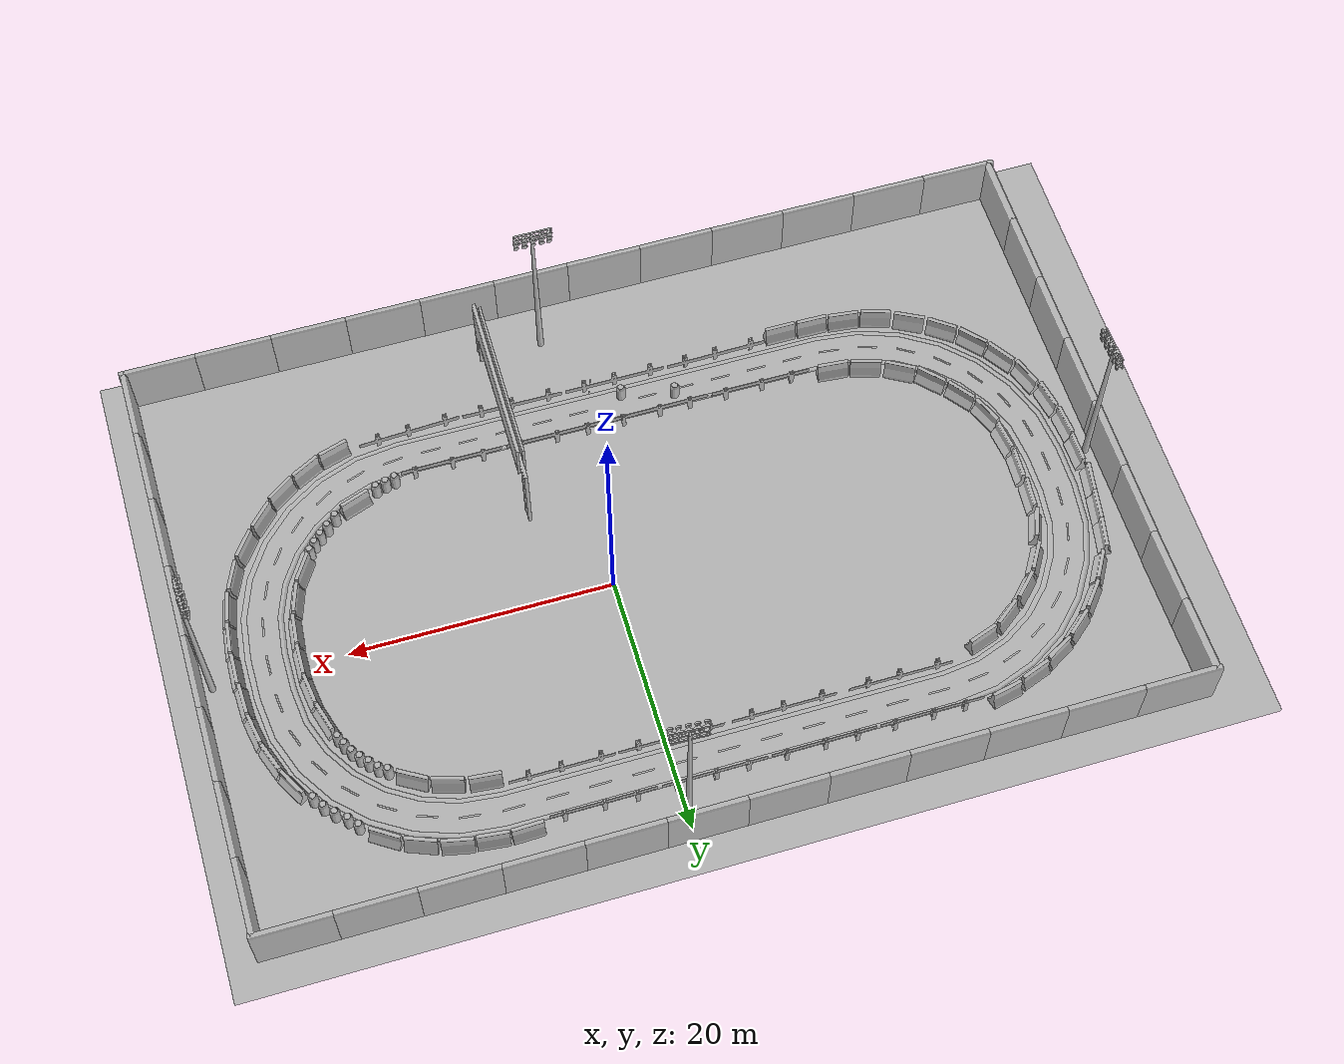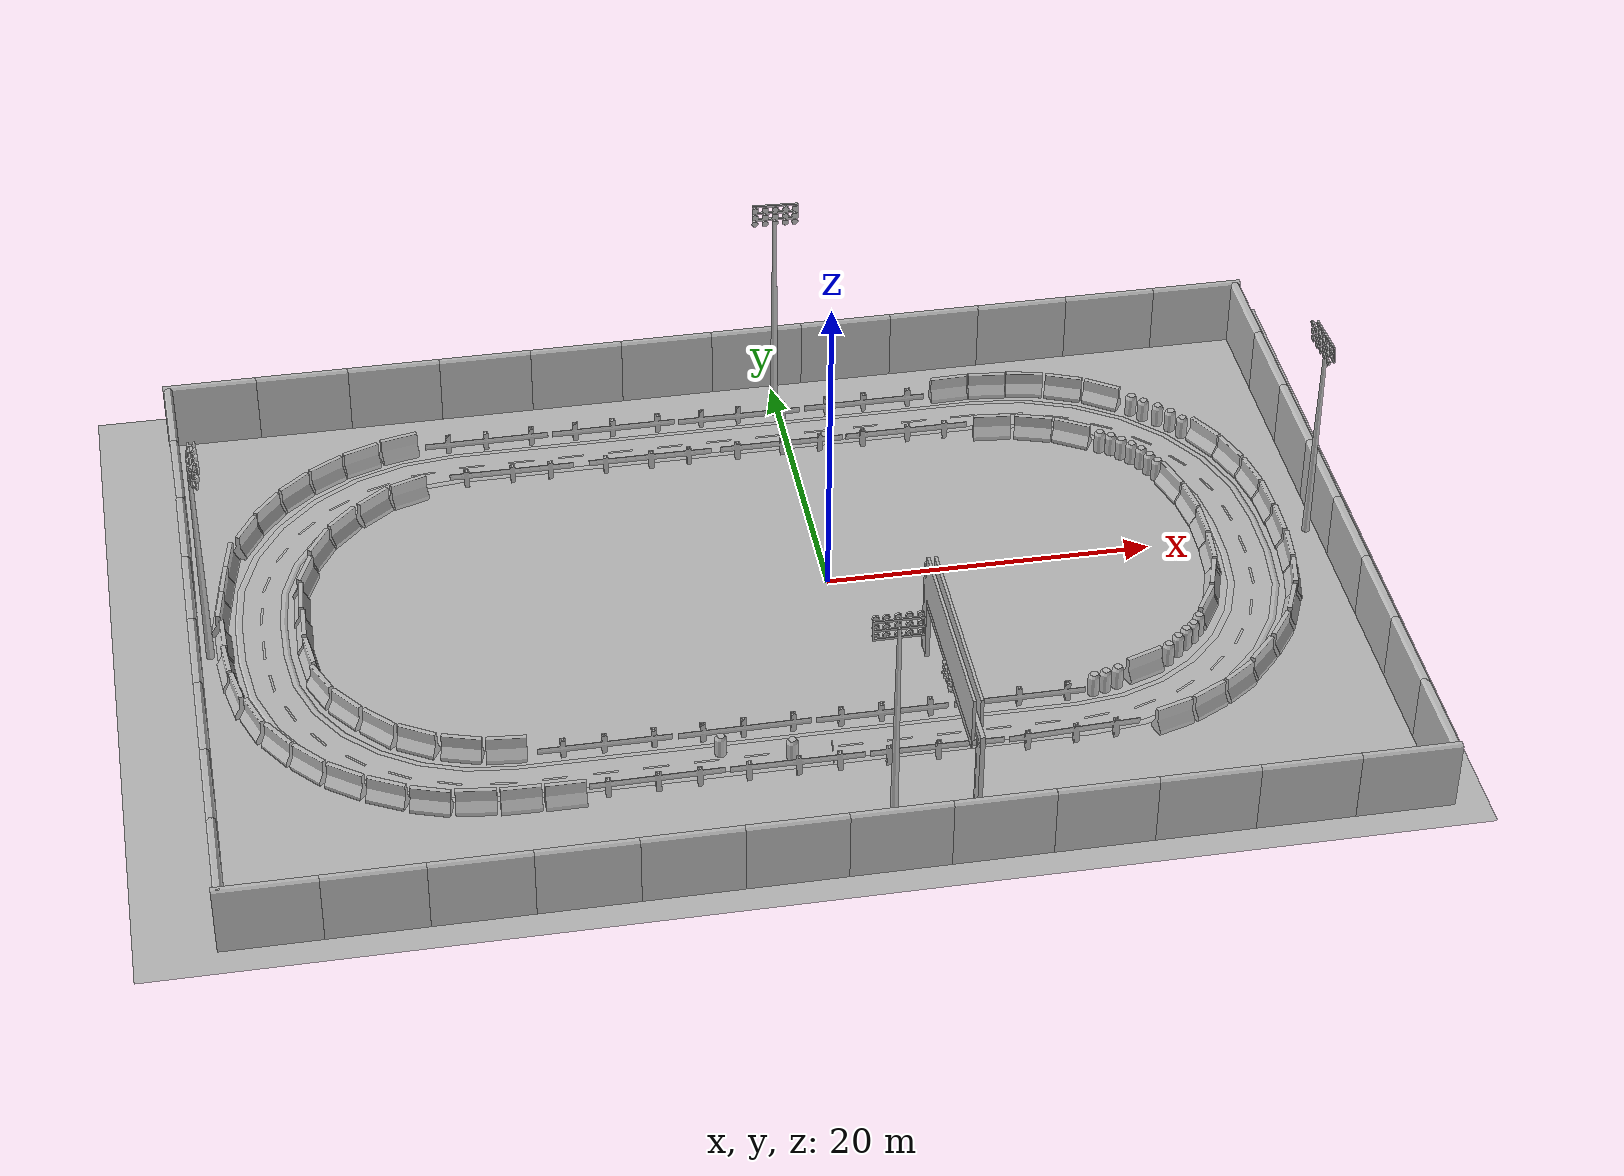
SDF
<sdf version="1.6">
 <world name="default">
  <gravity>0 0 -9.8</gravity>
  <magnetic_field>6e-06 2.3e-05 -4.2e-05</magnetic_field>
  <atmosphere type="adiabatic"/>
  <physics name="default_physics" default="0" type="ode">
   <max_step_size>0.001</max_step_size>
   <real_time_factor>1</real_time_factor>
   <real_time_update_rate>1000</real_time_update_rate>
  </physics>
  <scene><ambient>0.4 0.4 0.4 1</ambient><background>0.7 0.7 0.7 1</background><shadows>1</shadows></scene>
  <spherical_coordinates>
   <surface_model>EARTH_WGS84</surface_model>
   <latitude_deg>0</latitude_deg>
   <longitude_deg>0</longitude_deg>
   <elevation>0</elevation>
   <heading_deg>0</heading_deg>
  </spherical_coordinates>
  <model name="aws_robomaker_racetrack_Track_05">
   <include><uri>model://aws_robomaker_racetrack_Track_05</uri></include>
   <pose>0 0 0.051 0 -0 0</pose>
  </model>
  <model name="aws_robomaker_racetrack_Trackline_01">
   <include><uri>model://aws_robomaker_racetrack_Trackline_01</uri></include>
   <pose>-4.24539 0 0.102 0 -0 0</pose>
  </model>
  <model name="aws_robomaker_racetrack_Ground_01">
   <include><uri>model://aws_robomaker_racetrack_Ground_01</uri></include>
   <pose>-4.9 -2 0.05 0 -0 0</pose>
  </model>
  <model name="aws_robomaker_racetrack_StopSign_01">
   <include><uri>model://aws_robomaker_racetrack_StopSign_01</uri></include>
   <pose>-2.7487 -16.5 0.000775 0.075944 0.005053 -1.56731</pose>
  </model>
  <model name="aws_robomaker_racetrack_Billboard_01">
   <include><uri>model://aws_robomaker_racetrack_Billboard_01</uri></include>
   <pose>4.32789 -14.8431 -2e-06 0 1e-06 1.56416</pose>
  </model>
  <model name="aws_robomaker_racetrack_CrashworthBucket_01_00">
   <include><uri>model://aws_robomaker_racetrack_CrashworthBucket_01</uri></include>
   <pose>22.2917 13.5697 0 0 -0 0</pose>
  </model>
  <model name="aws_robomaker_racetrack_CrashworthBucket_01_01">
   <include><uri>model://aws_robomaker_racetrack_CrashworthBucket_01</uri></include>
   <pose>22.9018 12.8693 0.054 0 0 0</pose>
  </model>
  <model name="aws_robomaker_racetrack_CrashworthBucket_01_02">
   <include><uri>model://aws_robomaker_racetrack_CrashworthBucket_01</uri></include>
   <pose>22.2128 6.62693 0.054 0 0 0</pose>
  </model>
  <model name="aws_robomaker_racetrack_CrashworthBucket_01_03">
   <include><uri>model://aws_robomaker_racetrack_CrashworthBucket_01</uri></include>
   <pose>20.8422 -8.59507 0.054 0 0 0.012499</pose>
  </model>
  <model name="aws_robomaker_racetrack_CrashworthBucket_01_04">
   <include><uri>model://aws_robomaker_racetrack_CrashworthBucket_01</uri></include>
   <pose>20.3649 -9.17417 0 0 -0 0.004768</pose>
  </model>
  <model name="aws_robomaker_racetrack_CrashworthBucket_01_05">
   <include><uri>model://aws_robomaker_racetrack_CrashworthBucket_01</uri></include>
   <pose>19.7995 -9.67862 0.054 0 0 -0.003254</pose>
  </model>
  <model name="aws_robomaker_racetrack_CrashworthBucket_01_06">
   <include><uri>model://aws_robomaker_racetrack_CrashworthBucket_01</uri></include>
   <pose>19.1471 -10.2467 0.054 0 0 0</pose>
  </model>
  <model name="aws_robomaker_racetrack_CrashworthBucket_01_07">
   <include><uri>model://aws_robomaker_racetrack_CrashworthBucket_01</uri></include>
   <pose>18.3999 -10.9106 0.054 0 0 0</pose>
  </model>
  <model name="aws_robomaker_racetrack_CrashworthBucket_01_08">
   <include><uri>model://aws_robomaker_racetrack_CrashworthBucket_01</uri></include>
   <pose>14.1427 -12.6734 0.054 0 0 0</pose>
  </model>
  <model name="aws_robomaker_racetrack_CrashworthBucket_01_09">
   <include><uri>model://aws_robomaker_racetrack_CrashworthBucket_01</uri></include>
   <pose>14.9254 -12.4456 0.054 0 0 0</pose>
  </model>
  <model name="aws_robomaker_racetrack_CrashworthBucket_01_10">
   <include><uri>model://aws_robomaker_racetrack_CrashworthBucket_01</uri></include>
   <pose>13.3868 -12.8508 0.054 0 0 0</pose>
  </model>
  <model name="aws_robomaker_racetrack_CrashworthBucket_01_11">
   <include><uri>model://aws_robomaker_racetrack_CrashworthBucket_01</uri></include>
   <pose>23.6827 12.1956 0.054 0 0 0</pose>
  </model>
  <model name="aws_robomaker_racetrack_CrashworthBucket_01_12">
   <include><uri>model://aws_robomaker_racetrack_CrashworthBucket_01</uri></include>
   <pose>24.3346 11.4874 0.054 0 0 0</pose>
  </model>
  <model name="aws_robomaker_racetrack_CrashworthBucket_01_13">
   <include><uri>model://aws_robomaker_racetrack_CrashworthBucket_01</uri></include>
   <pose>24.8882 10.6788 0.054 0 0 0</pose>
  </model>
  <model name="aws_robomaker_racetrack_CrashworthBucket_01_14">
   <include><uri>model://aws_robomaker_racetrack_CrashworthBucket_01</uri></include>
   <pose>20.5304 9.13561 0.054 0 0 -0.001449</pose>
  </model>
  <model name="aws_robomaker_racetrack_CrashworthBucket_01_15">
   <include><uri>model://aws_robomaker_racetrack_CrashworthBucket_01</uri></include>
   <pose>19.3714 10.0864 0.054 0 0 0</pose>
  </model>
  <model name="aws_robomaker_racetrack_CrashworthBucket_01_16">
   <include><uri>model://aws_robomaker_racetrack_CrashworthBucket_01</uri></include>
   <pose>20.0016 9.69426 0 0 0 -0.00182</pose>
  </model>
  <model name="aws_robomaker_racetrack_CrashworthBucket_01_17">
   <include><uri>model://aws_robomaker_racetrack_CrashworthBucket_01</uri></include>
   <pose>21.0478 8.57525 0.054 0 0 -0.000349</pose>
  </model>
  <model name="aws_robomaker_racetrack_CrashworthBucket_01_18">
   <include><uri>model://aws_robomaker_racetrack_CrashworthBucket_01</uri></include>
   <pose>21.5218 7.97169 0.054 0 0 0</pose>
  </model>
  <model name="aws_robomaker_racetrack_CrashworthBucket_01_19">
   <include><uri>model://aws_robomaker_racetrack_CrashworthBucket_01</uri></include>
   <pose>21.8874 7.29413 0.054 0 0 0</pose>
  </model>
  <model name="aws_robomaker_racetrack_FenceMesh_01_00">
   <include><uri>model://aws_robomaker_racetrack_FenceMesh_01</uri></include>
   <pose>4.2331 -11.1761 5.05223 0 0 -0.006038</pose>
  </model>
  <model name="aws_robomaker_racetrack_FenceMesh_01_01">
   <include><uri>model://aws_robomaker_racetrack_FenceMesh_01</uri></include>
   <pose>4.16406 -18.6269 5.05223 0 0 -0.006038</pose>
  </model>
  <model name="aws_robomaker_racetrack_FenceMesh_01_02">
   <include><uri>model://aws_robomaker_racetrack_FenceMesh_01</uri></include>
   <pose>4.63223 -18.6067 5.05223 0 0 -0.006038</pose>
  </model>
  <model name="aws_robomaker_racetrack_FenceMesh_01_03">
   <include><uri>model://aws_robomaker_racetrack_FenceMesh_01</uri></include>
   <pose>4.67467 -11.1966 5.05223 0 0 -0.006038</pose>
  </model>
  <model name="aws_robomaker_racetrack_Fence_01_00">
   <include><uri>model://aws_robomaker_racetrack_Fence_01</uri></include>
   <pose>7.552996 13.158695 0 0 0 -1.57272</pose>
  </model>
  <model name="aws_robomaker_racetrack_Fence_01_01">
   <include><uri>model://aws_robomaker_racetrack_Fence_01</uri></include>
   <pose>-0.500271 13.158695 0 0 0 -1.57272</pose>
  </model>
  <model name="aws_robomaker_racetrack_Fence_01_02">
   <include><uri>model://aws_robomaker_racetrack_Fence_01</uri></include>
   <pose>-8.897229 13.158695 0 0 0 -1.57272</pose>
  </model>
  <model name="aws_robomaker_racetrack_Fence_01_03">
   <include><uri>model://aws_robomaker_racetrack_Fence_01</uri></include>
   <pose>-17.681196 13.158695 0 0 0 -1.57272</pose>
  </model>
  <model name="aws_robomaker_racetrack_Fence_01_04">
   <include><uri>model://aws_robomaker_racetrack_Fence_01</uri></include>
   <pose>-12.990376 -16.857170 0.054 -0.0 0.0 -1.558614</pose>
  </model>
  <model name="aws_robomaker_racetrack_Fence_01_05">
   <include><uri>model://aws_robomaker_racetrack_Fence_01</uri></include>
   <pose>-4.880881 -16.849474 0.054  0 0 -1.572721</pose>
  </model>
  <model name="aws_robomaker_racetrack_Fence_01_06">
   <include><uri>model://aws_robomaker_racetrack_Fence_01</uri></include>
   <pose>3.247635 -16.899557 0.054  0 0 -1.581650</pose>
  </model>
  <model name="aws_robomaker_racetrack_Fence_01_07">
   <include><uri>model://aws_robomaker_racetrack_Fence_01</uri></include>
   <pose>11.364270 -16.813890 0.054  0.0 0.0 -1.525504</pose>
  </model>
  <model name="aws_robomaker_racetrack_Fence_01_08">
   <include><uri>model://aws_robomaker_racetrack_Fence_01</uri></include>
   <pose>-15.529042 -13.134610 0.054 0 -0 1.57158</pose>
  </model>
  <model name="aws_robomaker_racetrack_Fence_01_09">
   <include><uri>model://aws_robomaker_racetrack_Fence_01</uri></include>
   <pose>-7.391050 -13.134610 0.054651 0 0.0 1.580400</pose>
  </model>
  <model name="aws_robomaker_racetrack_Fence_01_10">
   <include><uri>model://aws_robomaker_racetrack_Fence_01</uri></include>
   <pose>0.720398 -13.134610 0.054671 0 -0 1.57158</pose>
  </model>
  <model name="aws_robomaker_racetrack_Fence_01_11">
   <include><uri>model://aws_robomaker_racetrack_Fence_01</uri></include>
   <pose>8.89898 -13.134610 0.054638 0.0 0.0 1.572679</pose>
  </model>
  <model name="aws_robomaker_racetrack_Fence_01_12">
   <include><uri>model://aws_robomaker_racetrack_Fence_01</uri></include>
   <pose>-18.882746 16.818918 0.054  0 -0 1.57158</pose>
  </model>
  <model name="aws_robomaker_racetrack_Fence_01_13">
   <include><uri>model://aws_robomaker_racetrack_Fence_01</uri></include>
   <pose>-10.776134 16.818918 0.054  0 -0 1.57158</pose>
  </model>
  <model name="aws_robomaker_racetrack_Fence_01_14">
   <include><uri>model://aws_robomaker_racetrack_Fence_01</uri></include>
   <pose>-2.679413 16.818918 0 0 -0 1.57158</pose>
  </model>
  <model name="aws_robomaker_racetrack_Fence_01_15">
   <include><uri>model://aws_robomaker_racetrack_Fence_01</uri></include>
   <pose>5.475008 16.818918 0.054  0 -0 1.57158</pose>
  </model>
  <model name="aws_robomaker_racetrack_RaceStartLight_01_00">
   <include><uri>model://aws_robomaker_racetrack_RaceStartLight_01</uri></include>
   <pose>4.13359 -14.1692 5.08709 0 -0 0</pose>
  </model>
  <model name="aws_robomaker_racetrack_RaceStartLight_01_01">
   <include><uri>model://aws_robomaker_racetrack_RaceStartLight_01</uri></include>
   <pose>4.14665 -14.6522 5.08709 0 -0 0</pose>
  </model>
  <model name="aws_robomaker_racetrack_RaceStartLight_01_02">
   <include><uri>model://aws_robomaker_racetrack_RaceStartLight_01</uri></include>
   <pose>4.21676 -15.0918 5.08709 0 -0 0</pose>
  </model>
  <model name="aws_robomaker_racetrack_RaceStartLight_01_03">
   <include><uri>model://aws_robomaker_racetrack_RaceStartLight_01</uri></include>
   <pose>4.17594 -15.5526 5.08709 0 -0 0</pose>
  </model>
  <model name="aws_robomaker_racetrack_StonePier_01_00">
   <include><uri>model://aws_robomaker_racetrack_StonePier_01</uri></include>
   <pose>-21.1732 -12.7799 0.054 0 -0 -0.086667</pose>
  </model>
  <model name="aws_robomaker_racetrack_StonePier_01_01">
   <include><uri>model://aws_robomaker_racetrack_StonePier_01</uri></include>
   <pose>-23.6727 -12.2854 0.054 0 -0.0 -0.301631</pose>
  </model>
  <model name="aws_robomaker_racetrack_StonePier_01_03">
   <include><uri>model://aws_robomaker_racetrack_StonePier_01</uri></include>
   <pose>-24.2891 12.2118 0.054 0 -0 0.334226</pose>
  </model>
  <model name="aws_robomaker_racetrack_StonePier_01_05">
   <include><uri>model://aws_robomaker_racetrack_StonePier_01</uri></include>
   <pose>11.0892 17.2043 0.054 0 -0.0 0.029389</pose>
  </model>
  <model name="aws_robomaker_racetrack_StonePier_01_06">
   <include><uri>model://aws_robomaker_racetrack_StonePier_01</uri></include>
   <pose>13.5633 17.1121 0.054 0 -0.0 -0.108086</pose>
  </model>
  <model name="aws_robomaker_racetrack_StonePier_01_07">
   <include><uri>model://aws_robomaker_racetrack_StonePier_01</uri></include>
   <pose>16.0013 16.8104 0.054 0 -0.0 -0.206147</pose>
  </model>
  <model name="aws_robomaker_racetrack_StonePier_01_08">
   <include><uri>model://aws_robomaker_racetrack_StonePier_01</uri></include>
   <pose>18.4263 16.0384 0.054 0 -0.0 -0.379591</pose>
  </model>
  <model name="aws_robomaker_racetrack_StonePier_01_09">
   <include><uri>model://aws_robomaker_racetrack_StonePier_01</uri></include>
   <pose>17.8323 11.1467 0.054 0 -0.0 -0.536699</pose>
  </model>
  <model name="aws_robomaker_racetrack_StonePier_01_10">
   <include><uri>model://aws_robomaker_racetrack_StonePier_01</uri></include>
   <pose>22.7563 5.03589 0.054 0 -0.0 -1.28348</pose>
  </model>
  <model name="aws_robomaker_racetrack_StonePier_01_11">
   <include><uri>model://aws_robomaker_racetrack_StonePier_01</uri></include>
   <pose>23.2964 2.57509 0.054 -0 -0.0 -1.43498</pose>
  </model>
  <model name="aws_robomaker_racetrack_StonePier_01_12">
   <include><uri>model://aws_robomaker_racetrack_StonePier_01</uri></include>
   <pose>23.4326 0.10745 0.054 -0 -0.0 -1.58404</pose>
  </model>
  <model name="aws_robomaker_racetrack_StonePier_01_13">
   <include><uri>model://aws_robomaker_racetrack_StonePier_01</uri></include>
   <pose>23.2774 -2.40527 0.054 0 -0.0 -1.65922</pose>
  </model>
  <model name="aws_robomaker_racetrack_StonePier_01_14">
   <include><uri>model://aws_robomaker_racetrack_StonePier_01</uri></include>
   <pose>22.705 -4.89186 0.054 -0 -0.0 -1.88566</pose>
  </model>
  <model name="aws_robomaker_racetrack_StonePier_01_15">
   <include><uri>model://aws_robomaker_racetrack_StonePier_01</uri></include>
   <pose>21.6688 -7.19526 0.054 0 -0.0 -2.13625</pose>
  </model>
  <model name="aws_robomaker_racetrack_StonePier_01_16">
   <include><uri>model://aws_robomaker_racetrack_StonePier_01</uri></include>
   <pose>28.1211 -0.475719 0.054 0 -0.0 -1.59506</pose>
  </model>
  <model name="aws_robomaker_racetrack_StonePier_01_17">
   <include><uri>model://aws_robomaker_racetrack_StonePier_01</uri></include>
   <pose>16.7061 -11.7058 0.054 -0 -0.0 -2.7953</pose>
  </model>
  <model name="aws_robomaker_racetrack_StonePier_01_18">
   <include><uri>model://aws_robomaker_racetrack_StonePier_01</uri></include>
   <pose>28.0027 -3.03906 0.054 0 -0.0 -1.68291</pose>
  </model>
  <model name="aws_robomaker_racetrack_StonePier_01_21">
   <include><uri>model://aws_robomaker_racetrack_StonePier_01</uri></include>
   <pose>17.2914 -16.4156 0.054 0 -0.0 0.298911</pose>
  </model>
  <model name="aws_robomaker_racetrack_StonePier_01_22">
   <include><uri>model://aws_robomaker_racetrack_StonePier_01</uri></include>
   <pose>19.6208 -15.4615 0.054 0 -0.0 0.489077</pose>
  </model>
  <model name="aws_robomaker_racetrack_StonePier_01_23">
   <include><uri>model://aws_robomaker_racetrack_StonePier_01</uri></include>
   <pose>21.7939 -14.1476 0.054 0 -0.0 0.61668</pose>
  </model>
  <model name="aws_robomaker_racetrack_StonePier_01_24">
   <include><uri>model://aws_robomaker_racetrack_StonePier_01</uri></include>
   <pose>23.6698 -12.3608 0.054 0 -0.0 0.810318</pose>
  </model>
  <model name="aws_robomaker_racetrack_StonePier_01_25">
   <include><uri>model://aws_robomaker_racetrack_StonePier_01</uri></include>
   <pose>25.3929 -10.3347 0.054 -0 -0.0 0.931507</pose>
  </model>
  <model name="aws_robomaker_racetrack_StonePier_01_26">
   <include><uri>model://aws_robomaker_racetrack_StonePier_01</uri></include>
   <pose>27.7466 4.53211 0.054 0 -0.0 1.75246</pose>
  </model>
  <model name="aws_robomaker_racetrack_StonePier_01_27">
   <include><uri>model://aws_robomaker_racetrack_StonePier_01</uri></include>
   <pose>27.0691 6.99271 0.054 0 -0.0 1.91654</pose>
  </model>
  <model name="aws_robomaker_racetrack_StonePier_01_28">
   <include><uri>model://aws_robomaker_racetrack_StonePier_01</uri></include>
   <pose>26.0366 9.29805 0.054 0 -0.0 2.08782</pose>
  </model>
  <model name="aws_robomaker_racetrack_StonePier_01_29">
   <include><uri>model://aws_robomaker_racetrack_StonePier_01</uri></include>
   <pose>26.7385 -7.99231 0.054 -0 -0.0 1.16098</pose>
  </model>
  <model name="aws_robomaker_racetrack_StonePier_01_30">
   <include><uri>model://aws_robomaker_racetrack_StonePier_01</uri></include>
   <pose>27.5962 -5.54706 0.054 0 -0.0 1.36231</pose>
  </model>
  <model name="aws_robomaker_racetrack_StonePier_01_31">
   <include><uri>model://aws_robomaker_racetrack_StonePier_01</uri></include>
   <pose>28.0314 1.9989 0.054 0 -0.0 -1.53351</pose>
  </model>
  <model name="aws_robomaker_racetrack_StonePier_01_32">
   <include><uri>model://aws_robomaker_racetrack_StonePier_01</uri></include>
   <pose>20.6714 14.8473 0.054 0 -0.0 -0.587598</pose>
  </model>
  <model name="aws_robomaker_racetrack_StonePier_01_33">
   <include><uri>model://aws_robomaker_racetrack_StonePier_01</uri></include>
   <pose>12.9654 12.6879 0.054 0 -0.0 -0.096781</pose>
  </model>
  <model name="aws_robomaker_racetrack_StonePier_01_34">
   <include><uri>model://aws_robomaker_racetrack_StonePier_01</uri></include>
   <pose>15.5357 12.1477 0.054 -0 0.00036 -0.29956</pose>
  </model>
  <model name="aws_robomaker_racetrack_StonePier_01_36">
   <include><uri>model://aws_robomaker_racetrack_StonePier_01</uri></include>
   <pose>-26.5946 11.0295 0.054 0 0.00036 0.646791</pose>
  </model>
  <model name="aws_robomaker_racetrack_StonePier_01_37">
   <include><uri>model://aws_robomaker_racetrack_StonePier_01</uri></include>
   <pose>-24.4271 16.8105 0.054 -0 -0.0 0.217772</pose>
  </model>
  <model name="aws_robomaker_racetrack_StonePier_01_38">
   <include><uri>model://aws_robomaker_racetrack_StonePier_01</uri></include>
   <pose>-28.6752 9.30494 0.054 0 -0.0 0.789682</pose>
  </model>
  <model name="aws_robomaker_racetrack_StonePier_01_39">
   <include><uri>model://aws_robomaker_racetrack_StonePier_01</uri></include>
   <pose>-30.2584 7.24451 0.054 -0 -0.0 1.02306</pose>
  </model>
  <model name="aws_robomaker_racetrack_StonePier_01_40">
   <include><uri>model://aws_robomaker_racetrack_StonePier_01</uri></include>
   <pose>-18.3212 -17.1986 0.054 0 -0.0 -0.000165</pose>
  </model>
  <model name="aws_robomaker_racetrack_StonePier_01_41">
   <include><uri>model://aws_robomaker_racetrack_StonePier_01</uri></include>
   <pose>-26.1157 -11.2238 0.054 0 -0.0 -0.528829</pose>
  </model>
  <model name="aws_robomaker_racetrack_StonePier_01_42">
   <include><uri>model://aws_robomaker_racetrack_StonePier_01</uri></include>
   <pose>-28.1466 -9.75745 0.054 0 -0.0 -0.811127</pose>
  </model>
  <model name="aws_robomaker_racetrack_StonePier_01_43">
   <include><uri>model://aws_robomaker_racetrack_StonePier_01</uri></include>
   <pose>-29.8572 -7.79098 0.054 0 -0.0 -0.924577</pose>
  </model>
  <model name="aws_robomaker_racetrack_StonePier_01_44">
   <include><uri>model://aws_robomaker_racetrack_StonePier_01</uri></include>
   <pose>-31.1336 -5.56451 0.054 0 -0.0 -1.16956</pose>
  </model>
  <model name="aws_robomaker_racetrack_StonePier_01_45">
   <include><uri>model://aws_robomaker_racetrack_StonePier_01</uri></include>
   <pose>-31.6395 -3.07904 0.054 -0 -0.0 -1.43795</pose>
  </model>
  <model name="aws_robomaker_racetrack_StonePier_01_46">
   <include><uri>model://aws_robomaker_racetrack_StonePier_01</uri></include>
   <pose>-31.7709 -0.48849 0.054 0 -0.0 -1.61074</pose>
  </model>
  <model name="aws_robomaker_racetrack_StonePier_01_47">
   <include><uri>model://aws_robomaker_racetrack_StonePier_01</uri></include>
   <pose>-31.7363 2.12666 0.054 0 -0.0 -1.64853</pose>
  </model>
  <model name="aws_robomaker_racetrack_StonePier_01_48">
   <include><uri>model://aws_robomaker_racetrack_StonePier_01</uri></include>
   <pose>-31.2901 4.63965 0.054 -0 -0.0 -1.9545</pose>
  </model>
  <model name="aws_robomaker_racetrack_StonePier_01_52">
   <include><uri>model://aws_robomaker_racetrack_StonePier_01</uri></include>
   <pose>-28.2666 -15.3279 0.054 0 0.00036 -0.483595</pose>
  </model>
  <model name="aws_robomaker_racetrack_StonePier_01_53">
   <include><uri>model://aws_robomaker_racetrack_StonePier_01</uri></include>
   <pose>-30.4813 -13.931 0.054 0 -0.0 2.50624</pose>
  </model>
  <model name="aws_robomaker_racetrack_StonePier_01_54">
   <include><uri>model://aws_robomaker_racetrack_StonePier_01</uri></include>
   <pose>-32.3931 -12.181 0.054 0 -0.0 2.30053</pose>
  </model>
  <model name="aws_robomaker_racetrack_StonePier_01_55">
   <include><uri>model://aws_robomaker_racetrack_StonePier_01</uri></include>
   <pose>-33.9725 -10.1825 0.054 0 -0.0 2.15404</pose>
  </model>
  <model name="aws_robomaker_racetrack_StonePier_01_56">
   <include><uri>model://aws_robomaker_racetrack_StonePier_01</uri></include>
   <pose>-35.2144 -7.92381 0.054 0 -0.0 1.91826</pose>
  </model>
  <model name="aws_robomaker_racetrack_StonePier_01_57">
   <include><uri>model://aws_robomaker_racetrack_StonePier_01</uri></include>
   <pose>-36.4999 -3.03273 0.054 -0 0.00036 -1.47965</pose>
  </model>
  <model name="aws_robomaker_racetrack_StonePier_01_58">
   <include><uri>model://aws_robomaker_racetrack_StonePier_01</uri></include>
   <pose>-36.5369 -0.578473 -0.000468 -0 0.000348 1.59189</pose>
  </model>
  <model name="aws_robomaker_racetrack_StonePier_01_59">
   <include><uri>model://aws_robomaker_racetrack_StonePier_01</uri></include>
   <pose>-36.0789 -5.53149 0.054 0 -0.0 1.76121</pose>
  </model>
  <model name="aws_robomaker_racetrack_StonePier_01_60">
   <include><uri>model://aws_robomaker_racetrack_StonePier_01</uri></include>
   <pose>-36.5742 2.13483 -4.9e-05 -4.8e-05 -6.2e-05 1.40891</pose>
  </model>
  <model name="aws_robomaker_racetrack_StonePier_01_61">
   <include><uri>model://aws_robomaker_racetrack_StonePier_01</uri></include>
   <pose>-36.1891 4.48288 0.000698 -7e-05 -0.000662 1.40758</pose>
  </model>
  <model name="aws_robomaker_racetrack_StonePier_01_62">
   <include><uri>model://aws_robomaker_racetrack_StonePier_01</uri></include>
   <pose>-35.7706 6.79941 0.00067 5.5e-05 0.000534 1.37633</pose>
  </model>
  <model name="aws_robomaker_racetrack_StonePier_01_63">
   <include><uri>model://aws_robomaker_racetrack_StonePier_01</uri></include>
   <pose>-34.5101 9.28526 0.054 0 -0.0 1.03684</pose>
  </model>
  <model name="aws_robomaker_racetrack_StonePier_01_64">
   <include><uri>model://aws_robomaker_racetrack_StonePier_01</uri></include>
   <pose>-33.1083 11.4014 0.054 0 -0.0 0.877747</pose>
  </model>
  <model name="aws_robomaker_racetrack_StonePier_01_65">
   <include><uri>model://aws_robomaker_racetrack_StonePier_01</uri></include>
   <pose>-31.2882 13.312 0.054 -0 -0.0 0.701782</pose>
  </model>
  <model name="aws_robomaker_racetrack_StonePier_01_66">
   <include><uri>model://aws_robomaker_racetrack_StonePier_01</uri></include>
   <pose>-29.1909 14.829 0.054 0 -0.0 0.529025</pose>
  </model>
  <model name="aws_robomaker_racetrack_StonePier_01_67">
   <include><uri>model://aws_robomaker_racetrack_StonePier_01</uri></include>
   <pose>-26.9181 15.9588 0.054 0 -0.0 0.349577</pose>
  </model>
  <model name="aws_robomaker_racetrack_StonePier_01_68">
   <include><uri>model://aws_robomaker_racetrack_StonePier_01</uri></include>
   <pose>-20.8526 -17.1365 0.054 -0 0.00036 -0.016586</pose>
  </model>
  <model name="aws_robomaker_racetrack_StonePier_01_69">
   <include><uri>model://aws_robomaker_racetrack_StonePier_01</uri></include>
   <pose>-23.3756 -16.9024 0.054 0 -0.0 -0.119704</pose>
  </model>
  <model name="aws_robomaker_racetrack_StonePier_01_70">
   <include><uri>model://aws_robomaker_racetrack_StonePier_01</uri></include>
   <pose>-25.8909 -16.4126 0.054 0 -0.0 -0.32217</pose>
  </model>
  <model name="aws_robomaker_racetrack_Light_01_00">
   <include><uri>model://aws_robomaker_racetrack_Light_01</uri></include>
   <pose>-0.355802 -21.7691 0 0 -0 0</pose>
  </model>
  <model name="aws_robomaker_racetrack_Light_01_01">
   <include><uri>model://aws_robomaker_racetrack_Light_01</uri></include>
   <pose>0.041158 19.0887 0 0 -0 3.09146</pose>
  </model>
  <model name="aws_robomaker_racetrack_Light_01_02">
   <include><uri>model://aws_robomaker_racetrack_Light_01</uri></include>
   <pose>29.8469 -0.049215 0 0 -0 1.63215</pose>
  </model>
  <model name="aws_robomaker_racetrack_Light_01_03">
   <include><uri>model://aws_robomaker_racetrack_Light_01</uri></include>
   <pose>-37.2567 -0.808964 0 0 0 -1.52672</pose>
  </model>
  <model name="aws_robomaker_racetrack_Wall_01_00">
   <include><uri>model://aws_robomaker_racetrack_Wall_01</uri></include>
   <pose>10.772 20.6862 0 0 -0 0</pose>
  </model>
  <model name="aws_robomaker_racetrack_Wall_01_01">
   <include><uri>model://aws_robomaker_racetrack_Wall_01</uri></include>
   <pose>4.94795 20.6846 0 0 -0 0</pose>
  </model>
  <model name="aws_robomaker_racetrack_Wall_01_02">
   <include><uri>model://aws_robomaker_racetrack_Wall_01</uri></include>
   <pose>-0.883158 20.684 0 0 -0 0</pose>
  </model>
  <model name="aws_robomaker_racetrack_Wall_01_03">
   <include><uri>model://aws_robomaker_racetrack_Wall_01</uri></include>
   <pose>-6.71068 20.6834 0 0 -0 0</pose>
  </model>
  <model name="aws_robomaker_racetrack_Wall_01_04">
   <include><uri>model://aws_robomaker_racetrack_Wall_01</uri></include>
   <pose>-12.5489 20.683 0 0 -0 0</pose>
  </model>
  <model name="aws_robomaker_racetrack_Wall_01_05">
   <include><uri>model://aws_robomaker_racetrack_Wall_01</uri></include>
   <pose>-18.3809 20.685 0 0 -0 0</pose>
  </model>
  <model name="aws_robomaker_racetrack_Wall_01_06">
   <include><uri>model://aws_robomaker_racetrack_Wall_01</uri></include>
   <pose>-24.2154 20.6835 0 0 -0 0</pose>
  </model>
  <model name="aws_robomaker_racetrack_Wall_01_07">
   <include><uri>model://aws_robomaker_racetrack_Wall_01</uri></include>
   <pose>-30.0218 20.682 0 0 -0 0</pose>
  </model>
  <model name="aws_robomaker_racetrack_Wall_01_08">
   <include><uri>model://aws_robomaker_racetrack_Wall_01</uri></include>
   <pose>-35.8134 20.6795 0 0 -0 0</pose>
  </model>
  <model name="aws_robomaker_racetrack_Wall_01_09">
   <include><uri>model://aws_robomaker_racetrack_Wall_01</uri></include>
   <pose>-35.6316 -25.5235 0 0 -0 3.14066</pose>
  </model>
  <model name="aws_robomaker_racetrack_Wall_01_10">
   <include><uri>model://aws_robomaker_racetrack_Wall_01</uri></include>
   <pose>-29.8183 -25.5224 0 0 -0 0</pose>
  </model>
  <model name="aws_robomaker_racetrack_Wall_01_11">
   <include><uri>model://aws_robomaker_racetrack_Wall_01</uri></include>
   <pose>-23.9919 -25.5182 0 0 -0 0</pose>
  </model>
  <model name="aws_robomaker_racetrack_Wall_01_12">
   <include><uri>model://aws_robomaker_racetrack_Wall_01</uri></include>
   <pose>-18.1656 -25.5178 0 0 -0 0</pose>
  </model>
  <model name="aws_robomaker_racetrack_Wall_01_13">
   <include><uri>model://aws_robomaker_racetrack_Wall_01</uri></include>
   <pose>-12.3608 -25.513 0 0 -0 0</pose>
  </model>
  <model name="aws_robomaker_racetrack_Wall_01_14">
   <include><uri>model://aws_robomaker_racetrack_Wall_01</uri></include>
   <pose>-6.53417 -25.5081 0 0 -0 0</pose>
  </model>
  <model name="aws_robomaker_racetrack_Wall_01_15">
   <include><uri>model://aws_robomaker_racetrack_Wall_01</uri></include>
   <pose>-0.701372 -25.5056 0 0 -0 0</pose>
  </model>
  <model name="aws_robomaker_racetrack_Wall_01_16">
   <include><uri>model://aws_robomaker_racetrack_Wall_01</uri></include>
   <pose>5.12343 -25.507 0 0 -0 0</pose>
  </model>
  <model name="aws_robomaker_racetrack_Wall_01_17">
   <include><uri>model://aws_robomaker_racetrack_Wall_01</uri></include>
   <pose>10.9489 -25.511 0 0 -0 0</pose>
  </model>
  <model name="aws_robomaker_racetrack_Wall_01_18">
   <include><uri>model://aws_robomaker_racetrack_Wall_01</uri></include>
   <pose>16.7552 -25.5119 0 0 -0 0</pose>
  </model>
  <model name="aws_robomaker_racetrack_Wall_01_19">
   <include><uri>model://aws_robomaker_racetrack_Wall_01</uri></include>
   <pose>22.5772 -25.5071 0 0 -0 0</pose>
  </model>
  <model name="aws_robomaker_racetrack_Wall_01_20">
   <include><uri>model://aws_robomaker_racetrack_Wall_01</uri></include>
   <pose>28.3975 -25.5099 0 0 -0 0</pose>
  </model>
  <model name="aws_robomaker_racetrack_Wall_01_21">
   <include><uri>model://aws_robomaker_racetrack_Wall_01</uri></include>
   <pose>16.5737 20.6849 0 0 -0 0</pose>
  </model>
  <model name="aws_robomaker_racetrack_Wall_01_22">
   <include><uri>model://aws_robomaker_racetrack_Wall_01</uri></include>
   <pose>22.3987 20.6806 0 0 -0 0</pose>
  </model>
  <model name="aws_robomaker_racetrack_Wall_01_23">
   <include><uri>model://aws_robomaker_racetrack_Wall_01</uri></include>
   <pose>28.2373 20.6833 0 0 -0 0</pose>
  </model>
  <model name="aws_robomaker_racetrack_Wall_01_24">
   <include><uri>model://aws_robomaker_racetrack_Wall_01</uri></include>
   <pose>-38.3722 17.8758 0 0 -0 1.58903</pose>
  </model>
  <model name="aws_robomaker_racetrack_Wall_01_25">
   <include><uri>model://aws_robomaker_racetrack_Wall_01</uri></include>
   <pose>-38.2759 12.1211 0 0 -0 1.58713</pose>
  </model>
  <model name="aws_robomaker_racetrack_Wall_01_26">
   <include><uri>model://aws_robomaker_racetrack_Wall_01</uri></include>
   <pose>-38.2483 6.29377 0 0 -0 1.57459</pose>
  </model>
  <model name="aws_robomaker_racetrack_Wall_01_27">
   <include><uri>model://aws_robomaker_racetrack_Wall_01</uri></include>
   <pose>-38.2488 0.480728 0 0 -0 1.57459</pose>
  </model>
  <model name="aws_robomaker_racetrack_Wall_01_28">
   <include><uri>model://aws_robomaker_racetrack_Wall_01</uri></include>
   <pose>-38.2283 -5.33883 0 0 -0 1.57459</pose>
  </model>
  <model name="aws_robomaker_racetrack_Wall_01_29">
   <include><uri>model://aws_robomaker_racetrack_Wall_01</uri></include>
   <pose>-38.2023 -11.1666 0 0 -0 1.57459</pose>
  </model>
  <model name="aws_robomaker_racetrack_Wall_01_30">
   <include><uri>model://aws_robomaker_racetrack_Wall_01</uri></include>
   <pose>-38.1849 -16.999 0 0 -0 1.57459</pose>
  </model>
  <model name="aws_robomaker_racetrack_Wall_01_31">
   <include><uri>model://aws_robomaker_racetrack_Wall_01</uri></include>
   <pose>-38.1615 -22.7433 0 0 -0 1.57459</pose>
  </model>
  <model name="aws_robomaker_racetrack_Wall_01_32">
   <include><uri>model://aws_robomaker_racetrack_Wall_01</uri></include>
   <pose>30.9522 -17.1105 0 0 -0 1.57459</pose>
  </model>
  <model name="aws_robomaker_racetrack_Wall_01_33">
   <include><uri>model://aws_robomaker_racetrack_Wall_01</uri></include>
   <pose>30.9711 -22.7005 0 0 -0 1.57459</pose>
  </model>
  <model name="aws_robomaker_racetrack_Wall_01_34">
   <include><uri>model://aws_robomaker_racetrack_Wall_01</uri></include>
   <pose>30.9317 -11.3127 0 0 -0 1.57459</pose>
  </model>
  <model name="aws_robomaker_racetrack_Wall_01_35">
   <include><uri>model://aws_robomaker_racetrack_Wall_01</uri></include>
   <pose>30.9092 -5.49982 0 0 -0 1.57459</pose>
  </model>
  <model name="aws_robomaker_racetrack_Wall_01_36">
   <include><uri>model://aws_robomaker_racetrack_Wall_01</uri></include>
   <pose>30.8878 0.333623 0 0 -0 1.57459</pose>
  </model>
  <model name="aws_robomaker_racetrack_Wall_01_37">
   <include><uri>model://aws_robomaker_racetrack_Wall_01</uri></include>
   <pose>30.8663 6.16983 0 0 -0 1.57459</pose>
  </model>
  <model name="aws_robomaker_racetrack_Wall_01_38">
   <include><uri>model://aws_robomaker_racetrack_Wall_01</uri></include>
   <pose>30.8445 11.977 0 0 -0 1.57459</pose>
  </model>
  <model name="aws_robomaker_racetrack_Wall_01_39">
   <include><uri>model://aws_robomaker_racetrack_Wall_01</uri></include>
   <pose>30.8212 17.8155 0 0 -0 1.57459</pose>
  </model>
  <model name="ground_plane">
   <pose>0 0 -1 0 -0 0</pose>
   <scale>1 1 1</scale>
   <link name="link">
    <pose>0 0 -1 0 -0 0</pose>
    <velocity>0 0 0 0 -0 0</velocity>
    <acceleration>0 0 0 0 -0 0</acceleration>
   </link>
  </model>
  <model name="aws_robomaker_racetrack_CrashworthBucket_01_0_S">
   <include><uri>model://aws_robomaker_racetrack_CrashworthBucket_01</uri></include>
   <pose>-9 -14.5 0 0 -0 0</pose>
  </model>
  <model name="aws_robomaker_racetrack_CrashworthBucket_01_1_S">
   <include><uri>model://aws_robomaker_racetrack_CrashworthBucket_01</uri></include>
   <pose>-5 -15.5 0 0 -0 0</pose>
  </model>
  <light name="sun" type="directional">
   <pose>0 0 10 0 0 0</pose>
   <diffuse>1 1 1 1</diffuse>
   <specular>1 1 1 1</specular>
   <attenuation>
    <range>1000</range>
    <constant>0.9</constant>
    <linear>0.01</linear>
    <quadratic>0.001</quadratic>
   </attenuation>
   <direction>-0.5 0.1 -0.9</direction>
  </light>
  <light name="sun2" type="directional">
   <pose>0 0 10 0 0 0</pose>
   <diffuse>1 1 1 1</diffuse>
   <specular>1 1 1 1</specular>
   <attenuation>
    <range>1000</range>
    <constant>0.9</constant>
    <linear>0.01</linear>
    <quadratic>0.001</quadratic>
   </attenuation>
   <direction>-0.5 0.1 -0.9</direction>
  </light>
  <light name="user_point_light_0" type="point">
   <pose>1.49278 -15.5363 1 0 -0 0</pose>
   <diffuse>0 0.98039 0 1</diffuse>
   <specular>0.1 0.1 0.1 1</specular>
   <attenuation>
    <range>0.3</range>
    <constant>0.02</constant>
    <linear>0.01</linear>
    <quadratic>0</quadratic>
   </attenuation>
   <cast_shadows>0</cast_shadows>
   <direction>0 0 -1</direction>
  </light>
  <light name="user_point_light_1" type="point">
   <pose>6.99411 -11.55 1 0 -0 0</pose>
   <diffuse>0 0.98039 0 1</diffuse>
   <specular>0.1 0.1 0.1 1</specular>
   <attenuation>
    <range>0.3</range>
    <constant>0.02</constant>
    <linear>0.01</linear>
    <quadratic>0</quadratic>
   </attenuation>
   <cast_shadows>0</cast_shadows>
   <direction>0 0 -1</direction>
  </light>
  <light name="user_point_light_2" type="point">
   <pose>5.65528 -14.8924 1 0 -0 0</pose>
   <diffuse>0 0.98039 0 1</diffuse>
   <specular>0.1 0.1 0.1 1</specular>
   <attenuation>
    <range>0.3</range>
    <constant>0.02</constant>
    <linear>0.01</linear>
    <quadratic>0</quadratic>
   </attenuation>
   <cast_shadows>0</cast_shadows>
   <direction>0 0 -1</direction>
  </light>
  <light name="user_point_light_3" type="point">
   <pose>3.6452 -17.3437 1 0 -0 0</pose>
   <diffuse>0 0.98039 0 1</diffuse>
   <specular>0.1 0.1 0.1 1</specular>
   <attenuation>
    <range>0.3</range>
    <constant>0.02</constant>
    <linear>0.01</linear>
    <quadratic>0</quadratic>
   </attenuation>
   <cast_shadows>0</cast_shadows>
   <direction>0 0 -1</direction>
  </light>
 </world>
</sdf>

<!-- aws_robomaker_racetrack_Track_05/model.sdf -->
<sdf version='1.6'>

  <model name='aws_Track_05_border'>

     <link name='body_border'>
      <pose frame=''>0 0 0 0 -0 0</pose>
      <self_collide>0</self_collide>
      <kinematic>0</kinematic>
      <gravity>1</gravity>
      <inertial>
        <mass>1000</mass>
        <pose frame=''>0 0 0 0 -0 0</pose>
        <inertia>
          <ixx>1</ixx>
          <ixy>0</ixy>
          <ixz>0</ixz>
          <iyy>1</iyy>
          <iyz>0</iyz>
          <izz>1</izz>
        </inertia>
      </inertial>
      <visual name='visual'>
        <geometry>
          <mesh>
            <uri>models/aws_robomaker_racetrack_Track_05/meshes/aws_Track_05_visual_border.obj</uri>
            <scale>1 1 1</scale>
          </mesh>
        </geometry>
        <material>
          <shader type='pixel'>
            <normal_map>__default__</normal_map>
          </shader>
        </material>
        <pose frame=''>0 0 0 0 -0 0</pose>
        <cast_shadows>1</cast_shadows>
        <transparency>0</transparency>
        <meta>
          <layer>0</layer>
        </meta>
      </visual>

       <collision name='collision_0'>
        <laser_retro>0</laser_retro>
        <max_contacts>10</max_contacts>
        <pose frame=''>0 0 0 0 -0 0</pose>
        <geometry>
          <mesh>
            <uri>models/aws_robomaker_racetrack_Track_05/meshes/aws_Track_05_visual_border.obj</uri>
            <scale>1 1 1</scale>
          </mesh>
        </geometry>
        <surface>
          <friction>
            <ode>
              <mu>1</mu>
              <mu2>1</mu2>
              <fdir1>0 0 0</fdir1>
              <slip1>0</slip1>
              <slip2>0</slip2>
            </ode>
            <torsional>
              <coefficient>1</coefficient>
              <patch_radius>0</patch_radius>
              <surface_radius>0</surface_radius>
              <use_patch_radius>1</use_patch_radius>
              <ode>
                <slip>0</slip>
              </ode>
            </torsional>
          </friction>
          <bounce>
            <restitution_coefficient>0</restitution_coefficient>
            <threshold>1e+06</threshold>
          </bounce>
          <contact>
            <collide_without_contact>0</collide_without_contact>
            <collide_without_contact_bitmask>1</collide_without_contact_bitmask>
            <collide_bitmask>1</collide_bitmask>
            <ode>
              <soft_cfm>0</soft_cfm>
              <soft_erp>0.2</soft_erp>
              <kp>1e+13</kp>
              <kd>1</kd>
              <max_vel>0.01</max_vel>
              <min_depth>0</min_depth>
            </ode>
            <bullet>
              <split_impulse>1</split_impulse>
              <split_impulse_penetration_threshold>-0.01</split_impulse_penetration_threshold>
              <soft_cfm>0</soft_cfm>
              <soft_erp>0.2</soft_erp>
              <kp>1e+13</kp>
              <kd>1</kd>
            </bullet>
          </contact>
        </surface>
      </collision>

    </link>
  </model>

   <model name='aws_Track_05_track'>

     <link name='body_track'>
      <pose frame=''>0 0 0 0 -0 0</pose>
      <self_collide>0</self_collide>
      <kinematic>0</kinematic>
      <gravity>1</gravity>
      <inertial>
        <mass>1000</mass>
        <pose frame=''>0 0 0 0 -0 0</pose>
        <inertia>
          <ixx>1</ixx>
          <ixy>0</ixy>
          <ixz>0</ixz>
          <iyy>1</iyy>
          <iyz>0</iyz>
          <izz>1</izz>
        </inertia>
      </inertial>
      <visual name='visual'>
        <geometry>
          <mesh>
            <uri>models/aws_robomaker_racetrack_Track_05/meshes/aws_Track_05_visual_track.obj</uri>
            <scale>1 1 1</scale>
          </mesh>
        </geometry>
        <material>
          <shader type='pixel'>
            <normal_map>__default__</normal_map>
          </shader>
        </material>
        <pose frame=''>0 0 0 0 -0 0</pose>
        <cast_shadows>1</cast_shadows>
        <transparency>0</transparency>
        <meta>
          <layer>0</layer>
        </meta>
      </visual>
       <collision name='collision_0'>
        <laser_retro>0</laser_retro>
        <max_contacts>10</max_contacts>
        <pose frame=''>0 0 0 0 -0 0</pose>
        <geometry>
          <mesh>
            <uri>models/aws_robomaker_racetrack_Track_05/meshes/aws_Track_05_visual_track.obj</uri>
            <scale>1 1 1</scale>
          </mesh>
        </geometry>
        <surface>
          <friction>
            <ode>
              <mu>1</mu>
              <mu2>1</mu2>
              <fdir1>0 0 0</fdir1>
              <slip1>0</slip1>
              <slip2>0</slip2>
            </ode>
            <torsional>
              <coefficient>1</coefficient>
              <patch_radius>0</patch_radius>
              <surface_radius>0</surface_radius>
              <use_patch_radius>1</use_patch_radius>
              <ode>
                <slip>0</slip>
              </ode>
            </torsional>
          </friction>
          <bounce>
            <restitution_coefficient>0</restitution_coefficient>
            <threshold>1e+06</threshold>
          </bounce>
          <contact>
            <collide_without_contact>0</collide_without_contact>
            <collide_without_contact_bitmask>1</collide_without_contact_bitmask>
            <collide_bitmask>1</collide_bitmask>
            <ode>
              <soft_cfm>0</soft_cfm>
              <soft_erp>0.2</soft_erp>
              <kp>1e+13</kp>
              <kd>1</kd>
              <max_vel>0.01</max_vel>
              <min_depth>0</min_depth>
            </ode>
            <bullet>
              <split_impulse>1</split_impulse>
              <split_impulse_penetration_threshold>-0.01</split_impulse_penetration_threshold>
              <soft_cfm>0</soft_cfm>
              <soft_erp>0.2</soft_erp>
              <kp>1e+13</kp>
              <kd>1</kd>
            </bullet>
          </contact>
        </surface>
      </collision>
    </link>
  </model>
</sdf>

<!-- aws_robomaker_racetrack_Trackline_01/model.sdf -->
<sdf version='1.6'>
  <model name='aws_Trackline_01'>
    <link name='body'>
      <pose frame=''>0 0 0 0 -0 0</pose>
      <inertial>
        <mass>0.5</mass>
        <pose frame=''>0 0 0 0 -0 0</pose>
        <inertia>
          <ixx>1</ixx>
          <ixy>0</ixy>
          <ixz>0</ixz>
          <iyy>1</iyy>
          <iyz>0</iyz>
          <izz>1</izz>
        </inertia>
      </inertial>
      <self_collide>0</self_collide>
      <kinematic>0</kinematic>
      <gravity>1</gravity>
      <visual name='visual'>
        <geometry>
          <mesh>
            <uri>models/aws_robomaker_racetrack_Trackline_01/meshes/aws_Trackline_01_visual.obj</uri>
            <scale>0.01 0.01 0.01</scale>
          </mesh>
        </geometry>
        <material>
          <shader type='pixel'>
            <normal_map>__default__</normal_map>
          </shader>
        </material>
        <pose frame=''>0 0 0 0 -0 0</pose>
        <cast_shadows>1</cast_shadows>
        <transparency>0</transparency>
        <meta>
          <layer>0</layer>
        </meta>
      </visual>

    </link>
    <static>1</static>
  </model>
</sdf>

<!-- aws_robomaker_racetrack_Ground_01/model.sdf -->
<sdf version='1.6'>
  <model name='aws_Ground_01'>
    <link name='body'>
      <pose frame=''>0 0 0 0 -0 0</pose>
      <self_collide>0</self_collide>
      <kinematic>0</kinematic>
      <gravity>1</gravity>
      <inertial>
        <mass>10000</mass>
        <pose frame=''>0 0 0 0 -0 0</pose>
        <inertia>
          <ixx>0</ixx>
          <ixy>0</ixy>
          <ixz>0</ixz>
          <iyy>0</iyy>
          <iyz>0</iyz>
          <izz>0</izz>
        </inertia>
      </inertial>
      <visual name='visual'>
        <geometry>
          <mesh>
            <uri>models/aws_robomaker_racetrack_Ground_01/meshes/aws_Ground_01_visual.obj</uri>
            <scale>0.00090 0.0006 0.002</scale>
          </mesh>
        </geometry>
        <material>
          <shader type='pixel'>
            <normal_map>__default__</normal_map>
          </shader>
        </material>
        <pose frame=''>0 0 0 0 -0 0</pose>
        <cast_shadows>1</cast_shadows>
        <transparency>0</transparency>
        <meta>
          <layer>0</layer>
        </meta>
      </visual>
      <collision name='collision_0'>
        <laser_retro>0</laser_retro>
        <max_contacts>10</max_contacts>
        <pose frame=''>0 0 0 0 0 0</pose>
        <geometry>
          <mesh>
            <uri>models/aws_robomaker_racetrack_Ground_01/meshes/aws_Ground_01_collision.obj</uri>
            <scale>0.002 0.002 0.002</scale>
          </mesh>
        </geometry>
        <surface>
          <friction>
            <ode>
              <mu>1</mu>
              <mu2>1</mu2>
              <fdir1>0 0 0</fdir1>
              <slip1>0</slip1>
              <slip2>0</slip2>
            </ode>
            <torsional>
              <coefficient>1</coefficient>
              <patch_radius>0</patch_radius>
              <surface_radius>0</surface_radius>
              <use_patch_radius>1</use_patch_radius>
              <ode>
                <slip>0</slip>
              </ode>
            </torsional>
          </friction>
          <bounce>
            <restitution_coefficient>0</restitution_coefficient>
            <threshold>1e+06</threshold>
          </bounce>
          <contact>
            <collide_without_contact>0</collide_without_contact>
            <collide_without_contact_bitmask>1</collide_without_contact_bitmask>
            <collide_bitmask>0xffff</collide_bitmask>
            <ode>
              <soft_cfm>0</soft_cfm>
              <soft_erp>0.2</soft_erp>
              <kp>1e+13</kp>
              <kd>1</kd>
              <max_vel>0.01</max_vel>
              <min_depth>0</min_depth>
            </ode>
            <bullet>
              <split_impulse>1</split_impulse>
              <split_impulse_penetration_threshold>-0.01</split_impulse_penetration_threshold>
              <soft_cfm>0</soft_cfm>
              <soft_erp>0.2</soft_erp>
              <kp>1e+13</kp>
              <kd>1</kd>
            </bullet>
          </contact>
        </surface>
      </collision>
    </link>
    <static>1</static>
  </model>
</sdf>

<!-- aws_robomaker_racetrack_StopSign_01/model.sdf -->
<sdf version='1.6'>
  <model name='aws_StopSign_01'>
    <link name='body'>
      <pose frame=''>0 0 0 0 -0 0</pose>
      <self_collide>0</self_collide>
      <kinematic>0</kinematic>
      <gravity>1</gravity>
      <inertial>
        <mass>2</mass>
        <pose frame=''>0 0 0 0 -0 0</pose>
        <inertia>
          <ixx>1</ixx>
          <ixy>0</ixy>
          <ixz>0</ixz>
          <iyy>1</iyy>
          <iyz>0</iyz>
          <izz>1</izz>
        </inertia>
      </inertial>
      <visual name='visual'>
        <geometry>
          <mesh>
            <uri>models/aws_robomaker_racetrack_StopSign_01/meshes/aws_StopSign_01_visual.obj</uri>
            <scale>0.01 0.01 0.01</scale>
          </mesh>
        </geometry>
        <material>
          <shader type='pixel'>
            <normal_map>__default__</normal_map>
          </shader>
        </material>
        <pose frame=''>0 0 0 0 -0 0</pose>
        <cast_shadows>1</cast_shadows>
        <transparency>0</transparency>
        <meta>
          <layer>0</layer>
        </meta>
      </visual>
      <collision name='collision_0'>
        <laser_retro>0</laser_retro>
        <max_contacts>10</max_contacts>
        <pose frame=''>0 0 0 0 -0 0</pose>
        <geometry>
          <mesh>
            <uri>models/aws_robomaker_racetrack_StopSign_01/meshes/aws_StopSign_01_collision.obj</uri>
            <scale>0.01 0.01 0.01</scale>
          </mesh>
        </geometry>
        <surface>
          <friction>
            <ode>
              <mu>1</mu>
              <mu2>1</mu2>
              <fdir1>0 0 0</fdir1>
              <slip1>0</slip1>
              <slip2>0</slip2>
            </ode>
            <torsional>
              <coefficient>1</coefficient>
              <patch_radius>0</patch_radius>
              <surface_radius>0</surface_radius>
              <use_patch_radius>1</use_patch_radius>
              <ode>
                <slip>0</slip>
              </ode>
            </torsional>
          </friction>
          <bounce>
            <restitution_coefficient>0</restitution_coefficient>
            <threshold>1e+06</threshold>
          </bounce>
          <contact>
            <collide_without_contact>0</collide_without_contact>
            <collide_without_contact_bitmask>1</collide_without_contact_bitmask>
            <collide_bitmask>1</collide_bitmask>
            <ode>
              <soft_cfm>0</soft_cfm>
              <soft_erp>0.2</soft_erp>
              <kp>1e+13</kp>
              <kd>1</kd>
              <max_vel>0.01</max_vel>
              <min_depth>0</min_depth>
            </ode>
            <bullet>
              <split_impulse>1</split_impulse>
              <split_impulse_penetration_threshold>-0.01</split_impulse_penetration_threshold>
              <soft_cfm>0</soft_cfm>
              <soft_erp>0.2</soft_erp>
              <kp>1e+13</kp>
              <kd>1</kd>
            </bullet>
          </contact>
        </surface>
      </collision>
    </link>
    <static>true</static>
  </model>
</sdf>

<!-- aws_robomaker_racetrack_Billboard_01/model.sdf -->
<sdf version='1.6'>
  <model name='aws_Billboard_01'>
    <link name='body'>
      <pose frame=''>0 0 0 0 -0 0</pose>
      <self_collide>0</self_collide>
      <kinematic>0</kinematic>
      <gravity>1</gravity>
      <inertial>
        <mass>1000</mass>
        <pose frame=''>0 0 0 0 -0 0</pose>
        <inertia>
          <ixx>1</ixx>
          <ixy>0</ixy>
          <ixz>0</ixz>
          <iyy>1</iyy>
          <iyz>0</iyz>
          <izz>1</izz>
        </inertia>
      </inertial>
      <visual name='visual'>
        <geometry>
          <mesh>
            <uri>models/aws_robomaker_racetrack_Billboard_01/meshes/aws_Billboard_01_visual.obj</uri>
            <scale>0.01 0.01 0.01</scale>
          </mesh>
        </geometry>
        <material>
          <shader type='pixel'>
            <normal_map>__default__</normal_map>
          </shader>
        </material>
        <pose frame=''>0 0 0 0 -0 0</pose>
        <cast_shadows>1</cast_shadows>
        <transparency>0</transparency>
        <meta>
          <layer>2</layer>
        </meta>
      </visual>

    </link>
    <static>true</static>
  </model>
</sdf>

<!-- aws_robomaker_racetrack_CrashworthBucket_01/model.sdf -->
<sdf version='1.6'>
  <model name='aws_CrashworthBucket_01'>
    <link name='body'>
      <pose frame=''>0 0 0 0 -0 0</pose>
      <self_collide>0</self_collide>
      <kinematic>0</kinematic>
      <gravity>1</gravity>
      <inertial>
        <mass>5</mass>
        <pose frame=''>0 0 0 0 -0 0</pose>
        <inertia>
          <ixx>1</ixx>
          <ixy>0</ixy>
          <ixz>0</ixz>
          <iyy>1</iyy>
          <iyz>0</iyz>
          <izz>1</izz>
        </inertia>
      </inertial>
      <visual name='visual'>
        <geometry>
          <mesh>
            <uri>models/aws_robomaker_racetrack_CrashworthBucket_01/meshes/aws_CrashworthBucket_01_visual.obj</uri>
            <scale>0.01 0.01  0.01 </scale>
          </mesh>
        </geometry>
        <material>
          <shader type='pixel'>
            <normal_map>__default__</normal_map>
          </shader>
        </material>
        <pose frame=''>0 0 0 0 -0 0</pose>
        <cast_shadows>1</cast_shadows>
        <transparency>0</transparency>
        <meta>
          <layer>0</layer>
        </meta>
      </visual>
      <collision name='collision_0'>
        <laser_retro>0</laser_retro>
        <max_contacts>10</max_contacts>
        <pose frame=''>0 0 0 0 -0 0</pose>
        <geometry>
          <mesh>
            <uri>models/aws_robomaker_racetrack_CrashworthBucket_01/meshes/aws_CrashworthBucket_01_collision.obj</uri>
            <scale>0.01 0.01  0.01 </scale>
          </mesh>
        </geometry>
        <surface>
          <friction>
            <ode>
              <mu>1</mu>
              <mu2>1</mu2>
              <fdir1>0 0 0</fdir1>
              <slip1>0</slip1>
              <slip2>0</slip2>
            </ode>
            <torsional>
              <coefficient>1</coefficient>
              <patch_radius>0</patch_radius>
              <surface_radius>0</surface_radius>
              <use_patch_radius>1</use_patch_radius>
              <ode>
                <slip>0</slip>
              </ode>
            </torsional>
          </friction>
          <bounce>
            <restitution_coefficient>0</restitution_coefficient>
            <threshold>1e+06</threshold>
          </bounce>
          <contact>
            <collide_without_contact>0</collide_without_contact>
            <collide_without_contact_bitmask>1</collide_without_contact_bitmask>
            <collide_bitmask>1</collide_bitmask>
            <ode>
              <soft_cfm>0</soft_cfm>
              <soft_erp>0.2</soft_erp>
              <kp>1e+13</kp>
              <kd>1</kd>
              <max_vel>0.01</max_vel>
              <min_depth>0</min_depth>
            </ode>
            <bullet>
              <split_impulse>1</split_impulse>
              <split_impulse_penetration_threshold>-0.01</split_impulse_penetration_threshold>
              <soft_cfm>0</soft_cfm>
              <soft_erp>0.2</soft_erp>
              <kp>1e+13</kp>
              <kd>1</kd>
            </bullet>
          </contact>
        </surface>
      </collision>
    </link>
    <static>true</static>
  </model>
</sdf>

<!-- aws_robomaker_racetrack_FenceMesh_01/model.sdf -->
<sdf version='1.6'>
  <model name='aws_FenceMesh_01'>
    <link name='body'>
      <pose frame=''>0 0 0 0 -0 0</pose>
      <inertial>
        <mass>1</mass>
        <pose frame=''>0 0 0 0 -0 0</pose>
        <inertia>
          <ixx>1</ixx>
          <ixy>0</ixy>
          <ixz>0</ixz>
          <iyy>1</iyy>
          <iyz>0</iyz>
          <izz>1</izz>
        </inertia>
      </inertial>
      <self_collide>0</self_collide>
      <kinematic>0</kinematic>
      <gravity>1</gravity>
      <visual name='visual'>
        <geometry>
          <mesh>
            <uri>models/aws_robomaker_racetrack_FenceMesh_01/meshes/aws_FenceMesh_01_visual.obj</uri>
            <scale>0.01 0.01 0.01</scale>
          </mesh>
        </geometry>
        <material>
          <shader type='pixel'>
            <normal_map>__default__</normal_map>
          </shader>
        </material>
        <pose frame=''>0 0 0 0 -0 0</pose>
        <cast_shadows>1</cast_shadows>
        <transparency>0</transparency>
        <meta>
          <layer>2</layer>
        </meta>
      </visual>
      <collision name='collision_0'>
        <laser_retro>0</laser_retro>
        <max_contacts>10</max_contacts>
        <pose frame=''>0 0 0 0 -0 0</pose>
        <geometry>
          <mesh>
            <uri>models/aws_robomaker_racetrack_FenceMesh_01/meshes/aws_FenceMesh_01_collision.obj</uri>
            <scale>0.01 0.01 0.01</scale>
          </mesh>
        </geometry>
        <surface>
          <friction>
            <ode>
              <mu>1</mu>
              <mu2>1</mu2>
              <fdir1>0 0 0</fdir1>
              <slip1>0</slip1>
              <slip2>0</slip2>
            </ode>
            <torsional>
              <coefficient>1</coefficient>
              <patch_radius>0</patch_radius>
              <surface_radius>0</surface_radius>
              <use_patch_radius>1</use_patch_radius>
              <ode>
                <slip>0</slip>
              </ode>
            </torsional>
          </friction>
          <bounce>
            <restitution_coefficient>0</restitution_coefficient>
            <threshold>1e+06</threshold>
          </bounce>
          <contact>
            <collide_without_contact>0</collide_without_contact>
            <collide_without_contact_bitmask>1</collide_without_contact_bitmask>
            <collide_bitmask>2</collide_bitmask>
            <ode>
              <soft_cfm>0</soft_cfm>
              <soft_erp>0.2</soft_erp>
              <kp>1e+13</kp>
              <kd>1</kd>
              <max_vel>0.01</max_vel>
              <min_depth>0</min_depth>
            </ode>
            <bullet>
              <split_impulse>1</split_impulse>
              <split_impulse_penetration_threshold>-0.01</split_impulse_penetration_threshold>
              <soft_cfm>0</soft_cfm>
              <soft_erp>0.2</soft_erp>
              <kp>1e+13</kp>
              <kd>1</kd>
            </bullet>
          </contact>
        </surface>
      </collision>
    </link>
    <static>1</static>
    <allow_auto_disable>1</allow_auto_disable>
  </model>
</sdf>
